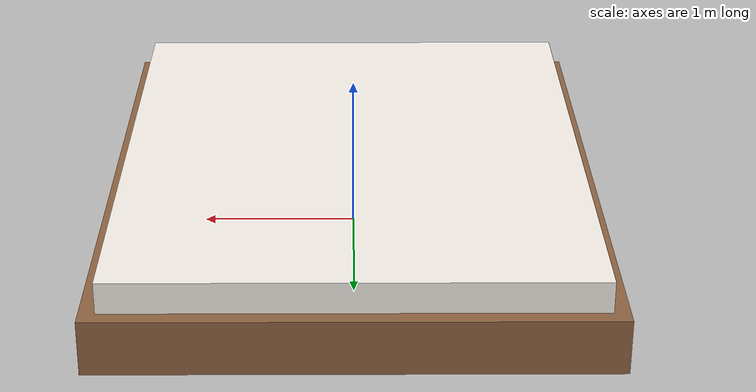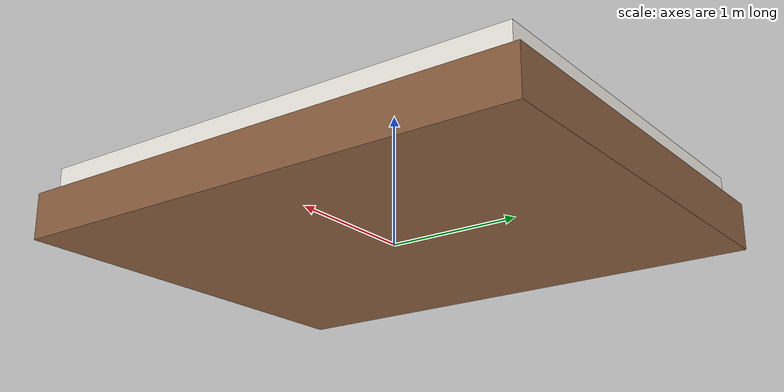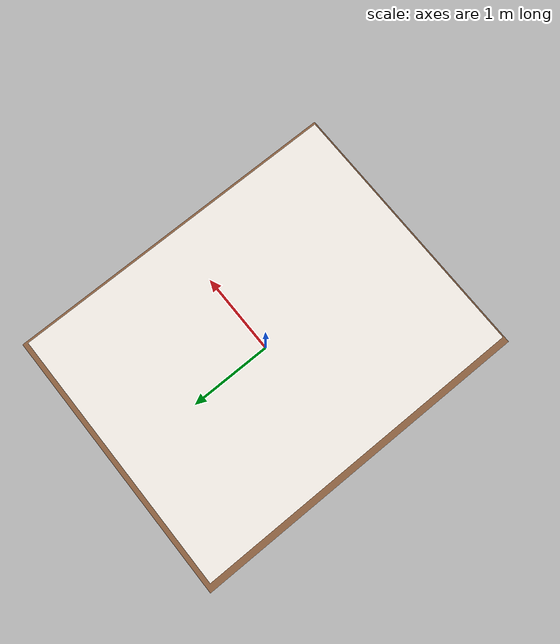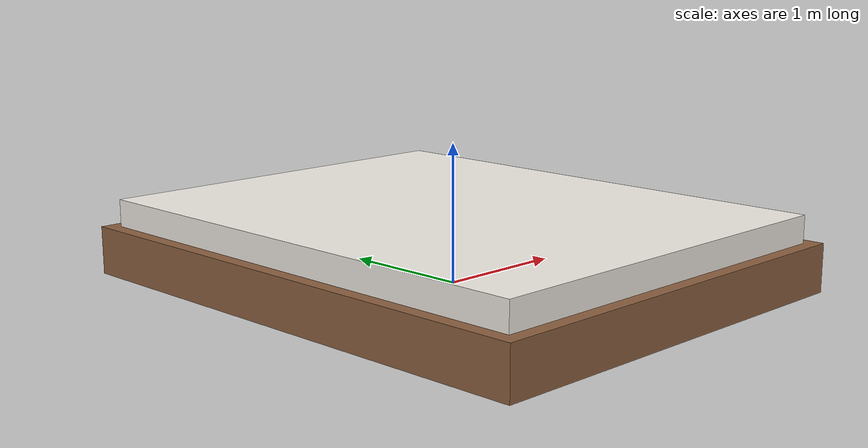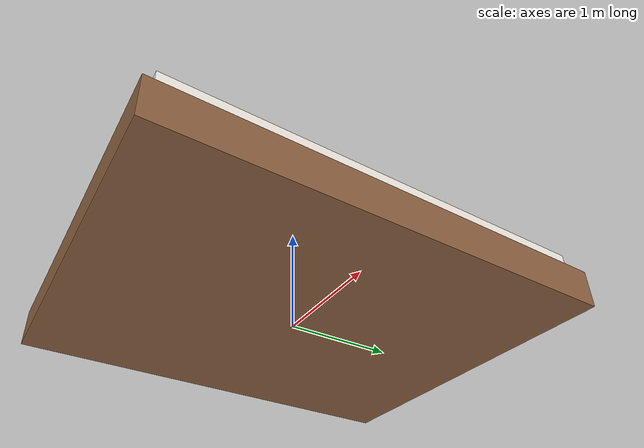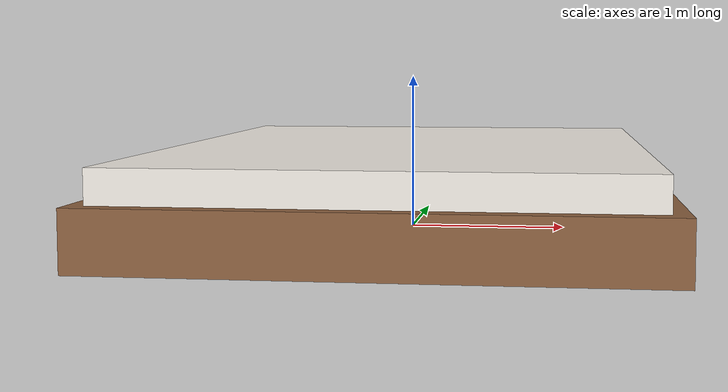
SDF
<?xml version="1.0" ?>
<sdf version="1.7">
  <model name="bed">
    <static>true</static>

    <link name="frame">
      <pose>0 0 0.175 0 0 0</pose>
      <collision name="collision">
        <geometry><box><size>3.20 4.00 0.35</size></box></geometry>
      </collision>
      <visual name="visual">
        <geometry><box><size>3.20 4.00 0.35</size></box></geometry>
        <material>
          <ambient>0.55 0.38 0.25 1</ambient>
          <diffuse>0.55 0.38 0.25 1</diffuse>
          <specular>0.05 0.05 0.05 1</specular>
        </material>
      </visual>
    </link>

    <link name="mattress">
      <pose>0 0 0.45 0 0 0</pose>
      <collision name="collision">
        <geometry><box><size>3.00 3.80 0.20</size></box></geometry>
      </collision>
      <visual name="visual">
        <geometry><box><size>3.00 3.80 0.20</size></box></geometry>
        <material>
          <ambient>0.95 0.93 0.90 1</ambient>
          <diffuse>0.95 0.93 0.90 1</diffuse>
          <specular>0.02 0.02 0.02 1</specular>
        </material>
      </visual>
    </link>

  </model>
</sdf>
